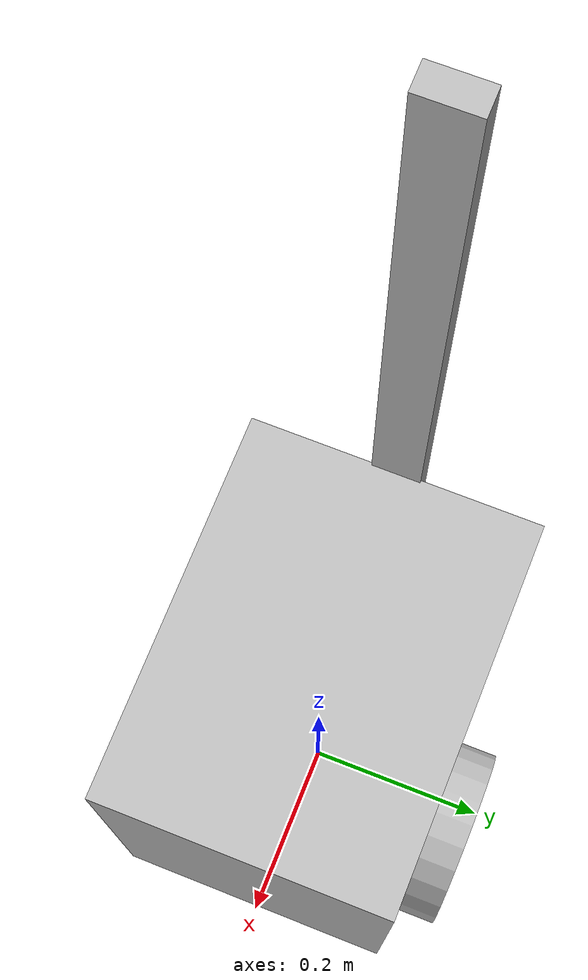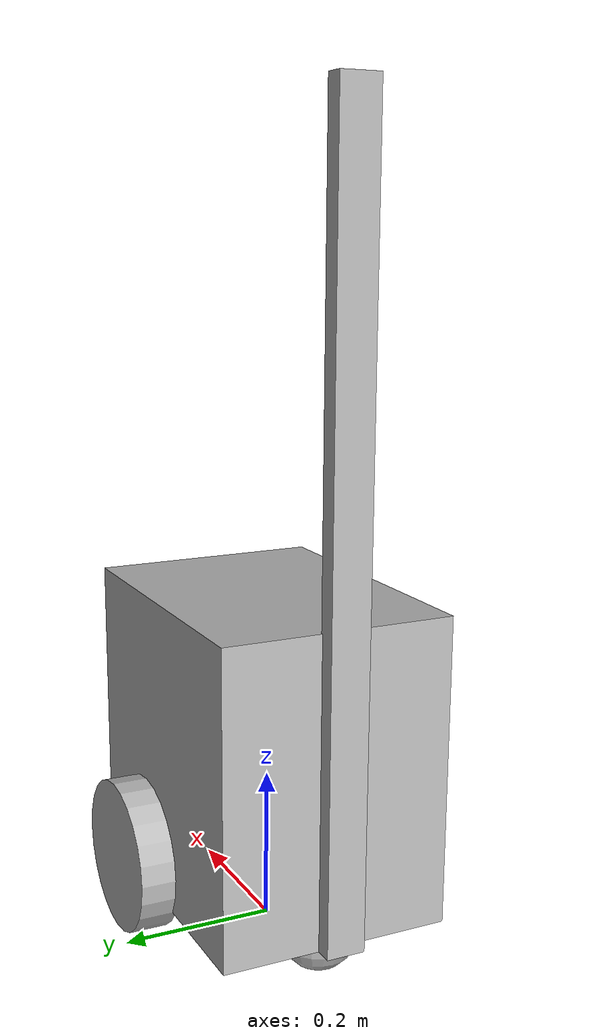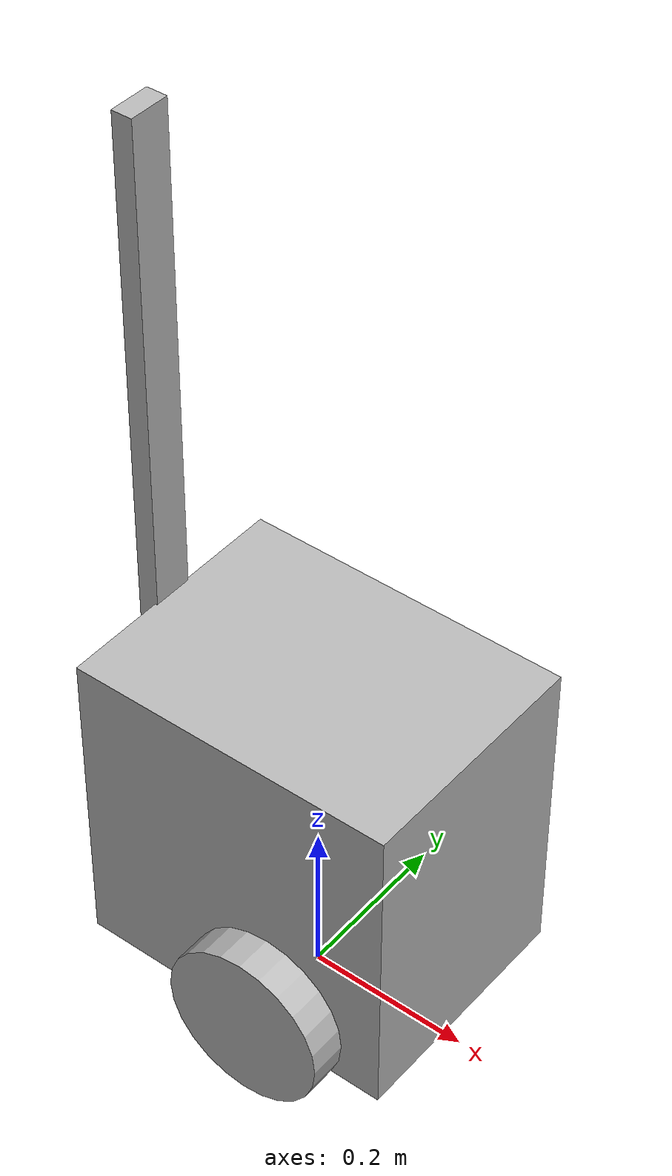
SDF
<?xml version='1.0'?>
<sdf version='1.4'>
  <model name="rh-y">
  	<static>false</static> <!-- Make robot dynamic -->
	<link name='chassis'>
		<pose>0 0 .25 0 0 0</pose>
		<!-- Define collision for the body -->
		<collision name='collision'>
		  <geometry>
		    <box>
		      <size>.4 .3 .4</size>
		    </box>
		  </geometry>
		</collision>
		<!-- Define visual size for the body-->
		<visual name='visual'>
		  <geometry>
		    <box>
		      <size>.4 .3 .4</size>
		    </box>
		  </geometry>
		</visual>
		<!-- Caster Wheel Collision + Visual below-->
	    <collision name='caster_collision'>
		    <pose>-0.15 0 -0.20 0 0 0</pose>
		    <geometry>
		        <sphere>
		        	<radius>.05</radius>
		      </sphere>
		    </geometry>

		    <surface>
		      <friction>
		        <ode>
		          <mu>0</mu>
		          <mu2>0</mu2>
		          <slip1>1.0</slip1>
		          <slip2>1.0</slip2>
		        </ode>
		      </friction>
		    </surface>
	  	</collision>

		<visual name='caster_visual'>
		<pose>-0.15 0 -0.20 0 0 0</pose>
		<geometry>
		  <sphere>
		    <radius>.05</radius>
		  </sphere>
		</geometry>
		</visual>

		<visual name='stand_visual'>
		<pose>-0.21 0 0.3 0 0 0</pose>
		<geometry>
			<box>
				<size>.025 .05 1.0</size>
			</box>
		</geometry>
		</visual>

		<collision name='stand_collision'>
		<pose>-0.21 0 0.3 0 0 0</pose>
		<geometry>
			<box>
				<size>.025 .05 1.0</size>
			</box>
		</geometry>
		</collision>

	</link>
	<!-- Left Wheel Parameters -->
	<link name="left_wheel">
	<pose>0.05 0.17 0.1 0 1.5707 1.5707</pose>
	<collision name="collision">
	  <geometry>
	    <cylinder>
	      <radius>.1</radius>
	      <length>.05</length>
	    </cylinder>
	  </geometry>
	</collision>
	<visual name="visual">
	  <geometry>
	    <cylinder>
	      <radius>.1</radius>
	      <length>.05</length>
	    </cylinder>
	  </geometry>
	</visual>
	</link>
	<!-- Right Wheel Parameters -->
	<link name="right_wheel">
	<pose>0.05 -0.17 0.1 0 1.5707 1.5707</pose>
	<collision name="collision">
	  <geometry>
	    <cylinder>
	      <radius>.1</radius>
	      <length>.05</length>
	    </cylinder>
	  </geometry>
	</collision>
	<visual name="visual">
	  <geometry>
	    <cylinder>
	      <radius>.1</radius>
	      <length>.05</length>
	    </cylinder>
	  </geometry>
	</visual>
	</link>
	<!-- Joint Information for left and right wheel hinges -->
	<joint type="revolute" name="left_wheel_hinge">
        <pose>0 0 -0.03 0 0 0</pose>
        <child>left_wheel</child>
        <parent>chassis</parent>
        <axis>
          <xyz>0 1 0</xyz>
        </axis>
	</joint>

	<joint type="revolute" name="right_wheel_hinge">
        <pose>0 0 0.03 0 0 0</pose>
        <child>right_wheel</child>
        <parent>chassis</parent>
        <axis>
          <xyz>0 1 0</xyz>
        </axis>
	</joint>

    <plugin name="differential_drive_controller" filename="libgazebo_ros_diff_drive.so">
      <alwaysOn>true</alwaysOn>
      <updateRate>10</updateRate>
      <leftJoint>left_wheel_hinge</leftJoint>
      <rightJoint>right_wheel_hinge</rightJoint>
      <wheelSeparation>0.34</wheelSeparation>
      <wheelDiameter>0.2</wheelDiameter>
      <torque>20</torque>
      <commandTopic>cmd_vel</commandTopic>
      <odometryTopic>odom</odometryTopic>
      <odometryFrame>odom</odometryFrame>
      <robotBaseFrame>base_footprint</robotBaseFrame>
      </plugin>

  </model>
</sdf>
